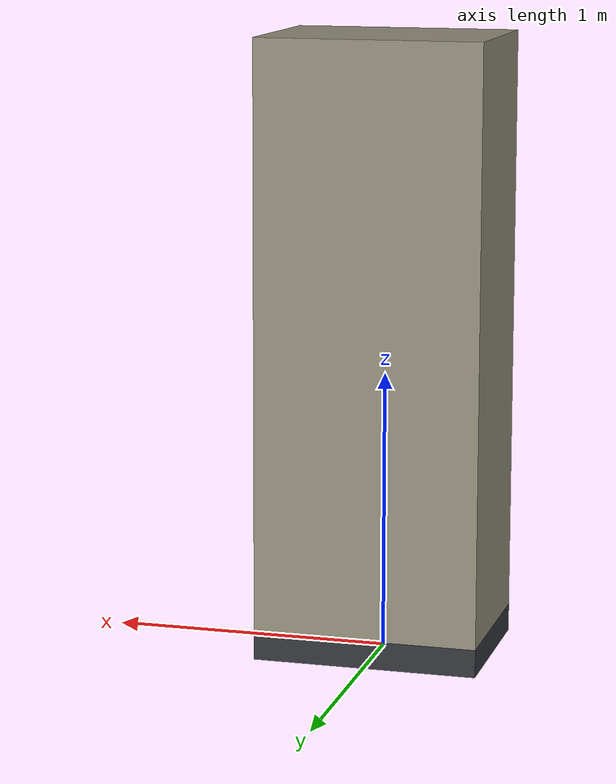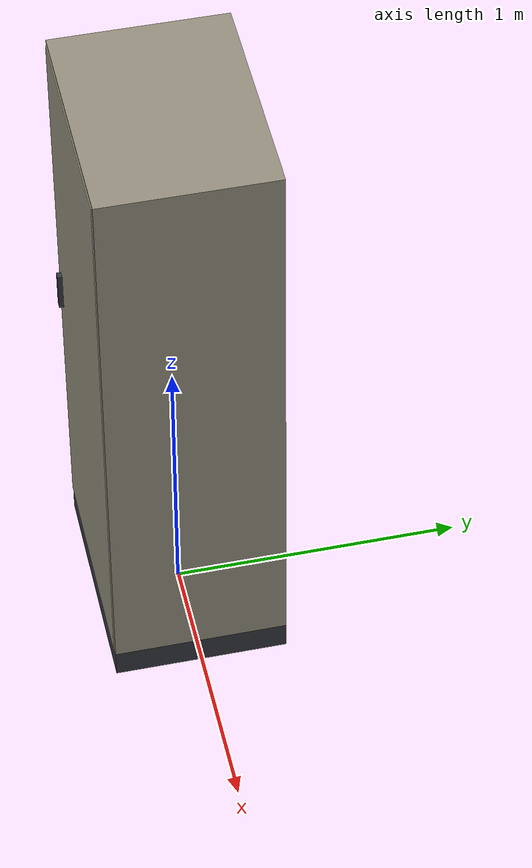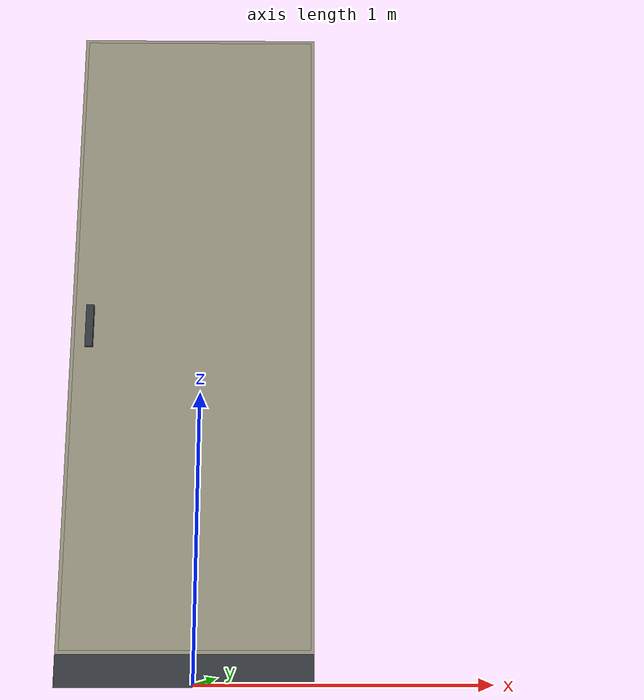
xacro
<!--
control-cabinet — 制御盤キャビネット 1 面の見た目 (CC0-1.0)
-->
<?xml version="1.0"?>
<robot xmlns:xacro="http://www.ros.org/wiki/xacro" name="control-cabinet-body">
  <xacro:arg name="width" default="0.8"/>
  <xacro:arg name="depth" default="0.6"/>
  <xacro:arg name="height" default="2.1"/>
  <xacro:arg name="base" default="0.1"/>

  <xacro:property name="w" value="$(arg width)"/>
  <xacro:property name="d" value="$(arg depth)"/>
  <xacro:property name="h" value="$(arg height)"/>
  <xacro:property name="b" value="$(arg base)"/>

  <!-- 扉まわりの寸法: 見切りの隙間、扉板の見付、ハンドル -->
  <xacro:property name="gap" value="0.012"/>
  <xacro:property name="leaf_t" value="0.004"/>
  <xacro:property name="face" value="${-d/2 - leaf_t/2}"/>
  <xacro:property name="zc" value="${b + h/2}"/>

  <!-- ライトベージュ塗装 (5Y7/1 相当)、基台とハンドルは黒 -->
  <material name="beige"><color rgba="0.58 0.56 0.49 1"/></material>
  <material name="dark"><color rgba="0.20 0.21 0.23 1"/></material>

  <link name="cabinet"/>

  <xacro:macro name="box_part" params="name size xyz mat">
    <link name="${name}">
      <visual>
        <origin xyz="${xyz}"/>
        <geometry><box size="${size}"/></geometry>
        <material name="${mat}"/>
      </visual>
    </link>
    <joint name="j_${name}" type="fixed"><parent link="cabinet"/><child link="${name}"/></joint>
  </xacro:macro>

  <!-- 基台 (チャンネルベース)。base=0 なら描かない -->
  <xacro:if value="${b &gt; 0}">
    <xacro:box_part name="plinth" size="${w} ${d} ${b}" xyz="0 0 ${b/2}" mat="dark"/>
  </xacro:if>

  <!-- 本体の箱。massing と同寸 (これが非表示になった massing の代わりに立つ) -->
  <xacro:box_part name="body" size="${w} ${d} ${h}" xyz="0 0 ${zc}" mat="beige"/>

  <!-- 扉板: 前面から一段浮かせ、周囲に見切りの隙間。ハンドルは吊元の反対側 -->
  <xacro:macro name="leaf" params="tag x lw hx">
    <xacro:box_part name="door_${tag}" size="${lw} ${leaf_t} ${h - 2*gap}"
                    xyz="${x} ${face} ${zc}" mat="beige"/>
    <xacro:box_part name="handle_${tag}" size="0.025 0.016 0.14"
                    xyz="${hx} ${face - leaf_t/2 - 0.008} ${zc}" mat="dark"/>
  </xacro:macro>

  <xacro:if value="${w &lt; 1.0}">
    <!-- 片扉: 右吊元、ハンドルは左寄り -->
    <xacro:leaf tag="s" x="0" lw="${w - 2*gap}" hx="${-(w/2 - gap - 0.05)}"/>
  </xacro:if>
  <xacro:if value="${w &gt;= 1.0}">
    <!-- 両扉: 中央で見合い、ハンドルは見合いの両側 -->
    <xacro:property name="lw" value="${(w - 3*gap)/2}"/>
    <xacro:leaf tag="l" x="${-(gap/2 + lw/2)}" lw="${lw}" hx="${-(gap/2 + 0.05)}"/>
    <xacro:leaf tag="r" x="${gap/2 + lw/2}" lw="${lw}" hx="${gap/2 + 0.05}"/>
  </xacro:if>
</robot>
